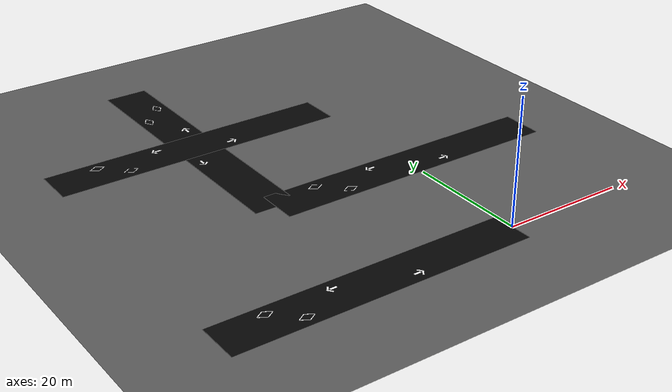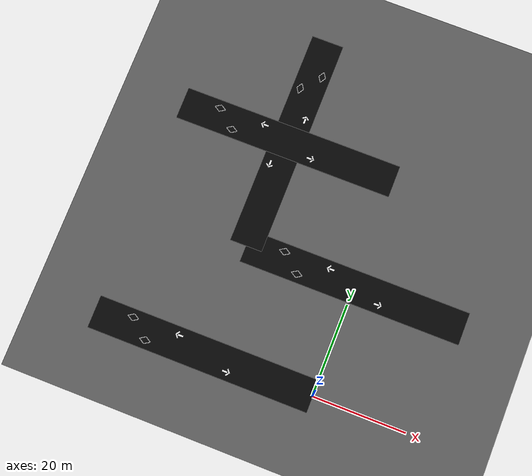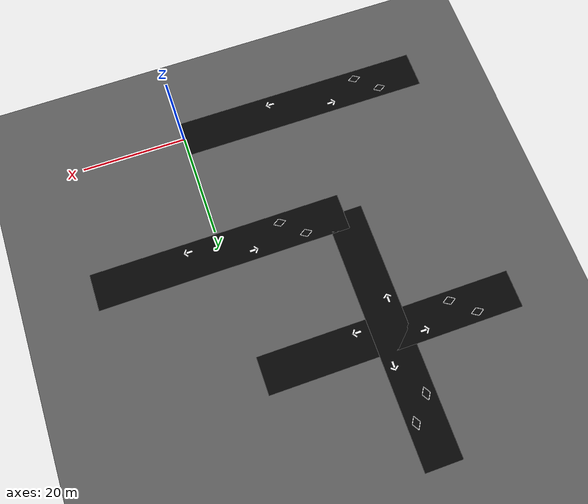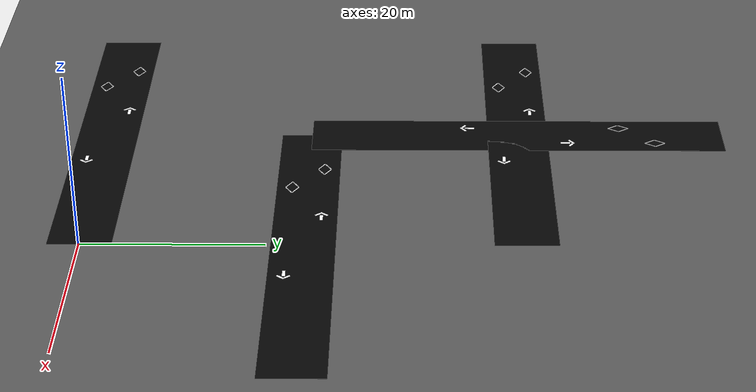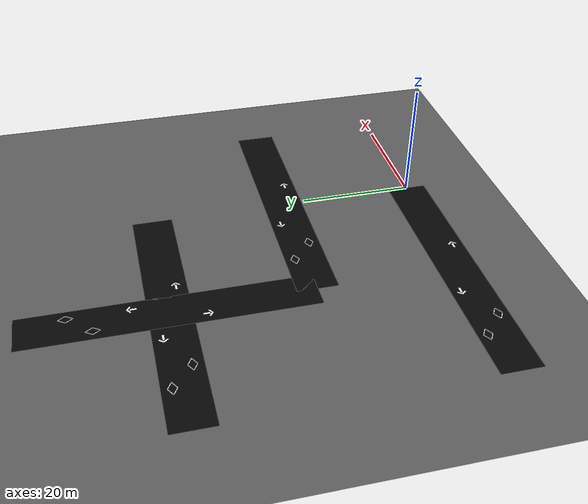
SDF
<sdf version="1.9">
 <world name="test_straight_road_world">
  <light name="sun" type="directional">
   <pose>0 0 10 0 0 0</pose>
   <diffuse>0.8 0.8 0.8 1</diffuse>
   <specular>0.2 0.2 0.2 1</specular>
   <direction>-0.5 0.1 -0.9</direction>
  </light>
  <model name="ground_plane">
   <static>true</static>
   <link name="ground_link">
    <collision name="collision">
     <geometry><plane><normal>0 0 1</normal><size>120 120</size></plane></geometry>
    </collision>
    <visual name="visual">
     <geometry><plane><normal>0 0 1</normal><size>120 120</size></plane></geometry>
     <material><ambient>0.35 0.35 0.35 1</ambient><diffuse>0.35 0.35 0.35 1</diffuse></material>
    </visual>
   </link>
  </model>
  <include><name>straight_road_01</name><uri>model://straight_road</uri><pose>0 0 0 0 0 1.5708</pose></include>
  <include><name>straight_road_02</name><uri>model://straight_road</uri><pose>0 48 0 0 0 1.5708</pose></include>
  <include><name>straight_road_03</name><uri>model://straight_road</uri><pose>-24 24 0 0 0 0</pose></include>
  <include>
   <name>straight_road_04</name>
   <uri>model://straight_road</uri>
   <pose>24 24 0 0 0 1.5708</pose>
  </include>
 </world>
</sdf>

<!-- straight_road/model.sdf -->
<sdf version="1.9">

  <model name="straight_road">
    <static>true</static>

    <link name="road_link">

      <!--
        도로 collision:
        pose z = -0.01, size z = 0.02 이므로
        도로 윗면이 정확히 z = 0.0 이 됨.
      -->
      <collision name="road_collision">
        <pose>0 24 -0.01 0 0 0</pose>
        <geometry>
          <box>
            <size>7 48 0.02</size>
          </box>
        </geometry>
        <surface>
          <friction>
            <ode>
              <mu>1.0</mu>
              <mu2>1.0</mu2>
            </ode>
          </friction>
        </surface>
      </collision>

      <!-- 도로 표면: visual 전용 plane -->
      <visual name="road_surface">
        <pose>0 24 0.000 0 0 0</pose>
        <cast_shadows>false</cast_shadows>
        <geometry>
          <plane>
            <normal>0 0 1</normal>
            <size>7 48</size>
          </plane>
        </geometry>
        <material>
          <ambient>0.02 0.02 0.02 1</ambient>
          <diffuse>0.02 0.02 0.02 1</diffuse>
        </material>
      </visual>

      <!-- 좌측 흰색 경계선 -->
      <visual name="left_edge_line">
        <pose>-3.35 24 0.002 0 0 0</pose>
        <cast_shadows>false</cast_shadows>
        <geometry>
          <plane>
            <normal>0 0 1</normal>
            <size>0.12 48</size>
          </plane>
        </geometry>
        <material>
          <ambient>1 1 1 1</ambient>
          <diffuse>1 1 1 1</diffuse>
        </material>
      </visual>

      <!-- 우측 흰색 경계선 -->
      <visual name="right_edge_line">
        <pose>3.35 24 0.002 0 0 0</pose>
        <cast_shadows>false</cast_shadows>
        <geometry>
          <plane>
            <normal>0 0 1</normal>
            <size>0.12 48</size>
          </plane>
        </geometry>
        <material>
          <ambient>1 1 1 1</ambient>
          <diffuse>1 1 1 1</diffuse>
        </material>
      </visual>

      <!-- 중앙 노란 이중 실선 -->
      <visual name="center_yellow_line_left">
        <pose>-0.10 24 0.002 0 0 0</pose>
        <cast_shadows>false</cast_shadows>
        <geometry>
          <plane>
            <normal>0 0 1</normal>
            <size>0.08 48</size>
          </plane>
        </geometry>
        <material>
          <ambient>1.0 0.78 0.0 1</ambient>
          <diffuse>1.0 0.78 0.0 1</diffuse>
        </material>
      </visual>

      <visual name="center_yellow_line_right">
        <pose>0.10 24 0.002 0 0 0</pose>
        <cast_shadows>false</cast_shadows>
        <geometry>
          <plane>
            <normal>0 0 1</normal>
            <size>0.08 48</size>
          </plane>
        </geometry>
        <material>
          <ambient>1.0 0.78 0.0 1</ambient>
          <diffuse>1.0 0.78 0.0 1</diffuse>
        </material>
      </visual>

      <!-- 시작부 횡단보도 -->
      <visual name="crosswalk_start_s01"><pose>-2.8 2.0 0.003 0 0 0</pose><cast_shadows>false</cast_shadows><geometry><plane><normal>0 0 1</normal><size>0.35 3.0</size></plane></geometry><material><ambient>1 1 1 1</ambient><diffuse>1 1 1 1</diffuse></material></visual>
      <visual name="crosswalk_start_s02"><pose>-2.1 2.0 0.003 0 0 0</pose><cast_shadows>false</cast_shadows><geometry><plane><normal>0 0 1</normal><size>0.35 3.0</size></plane></geometry><material><ambient>1 1 1 1</ambient><diffuse>1 1 1 1</diffuse></material></visual>
      <visual name="crosswalk_start_s03"><pose>-1.4 2.0 0.003 0 0 0</pose><cast_shadows>false</cast_shadows><geometry><plane><normal>0 0 1</normal><size>0.35 3.0</size></plane></geometry><material><ambient>1 1 1 1</ambient><diffuse>1 1 1 1</diffuse></material></visual>
      <visual name="crosswalk_start_s04"><pose>-0.7 2.0 0.003 0 0 0</pose><cast_shadows>false</cast_shadows><geometry><plane><normal>0 0 1</normal><size>0.35 3.0</size></plane></geometry><material><ambient>1 1 1 1</ambient><diffuse>1 1 1 1</diffuse></material></visual>
      <visual name="crosswalk_start_s05"><pose>0.0 2.0 0.003 0 0 0</pose><cast_shadows>false</cast_shadows><geometry><plane><normal>0 0 1</normal><size>0.35 3.0</size></plane></geometry><material><ambient>1 1 1 1</ambient><diffuse>1 1 1 1</diffuse></material></visual>
      <visual name="crosswalk_start_s06"><pose>0.7 2.0 0.003 0 0 0</pose><cast_shadows>false</cast_shadows><geometry><plane><normal>0 0 1</normal><size>0.35 3.0</size></plane></geometry><material><ambient>1 1 1 1</ambient><diffuse>1 1 1 1</diffuse></material></visual>
      <visual name="crosswalk_start_s07"><pose>1.4 2.0 0.003 0 0 0</pose><cast_shadows>false</cast_shadows><geometry><plane><normal>0 0 1</normal><size>0.35 3.0</size></plane></geometry><material><ambient>1 1 1 1</ambient><diffuse>1 1 1 1</diffuse></material></visual>
      <visual name="crosswalk_start_s08"><pose>2.1 2.0 0.003 0 0 0</pose><cast_shadows>false</cast_shadows><geometry><plane><normal>0 0 1</normal><size>0.35 3.0</size></plane></geometry><material><ambient>1 1 1 1</ambient><diffuse>1 1 1 1</diffuse></material></visual>
      <visual name="crosswalk_start_s09"><pose>2.8 2.0 0.003 0 0 0</pose><cast_shadows>false</cast_shadows><geometry><plane><normal>0 0 1</normal><size>0.35 3.0</size></plane></geometry><material><ambient>1 1 1 1</ambient><diffuse>1 1 1 1</diffuse></material></visual>

      <!-- 끝부분 횡단보도 -->
      <visual name="crosswalk_end_s01"><pose>-2.8 46.0 0.003 0 0 0</pose><cast_shadows>false</cast_shadows><geometry><plane><normal>0 0 1</normal><size>0.35 3.0</size></plane></geometry><material><ambient>1 1 1 1</ambient><diffuse>1 1 1 1</diffuse></material></visual>
      <visual name="crosswalk_end_s02"><pose>-2.1 46.0 0.003 0 0 0</pose><cast_shadows>false</cast_shadows><geometry><plane><normal>0 0 1</normal><size>0.35 3.0</size></plane></geometry><material><ambient>1 1 1 1</ambient><diffuse>1 1 1 1</diffuse></material></visual>
      <visual name="crosswalk_end_s03"><pose>-1.4 46.0 0.003 0 0 0</pose><cast_shadows>false</cast_shadows><geometry><plane><normal>0 0 1</normal><size>0.35 3.0</size></plane></geometry><material><ambient>1 1 1 1</ambient><diffuse>1 1 1 1</diffuse></material></visual>
      <visual name="crosswalk_end_s04"><pose>-0.7 46.0 0.003 0 0 0</pose><cast_shadows>false</cast_shadows><geometry><plane><normal>0 0 1</normal><size>0.35 3.0</size></plane></geometry><material><ambient>1 1 1 1</ambient><diffuse>1 1 1 1</diffuse></material></visual>
      <visual name="crosswalk_end_s05"><pose>0.0 46.0 0.003 0 0 0</pose><cast_shadows>false</cast_shadows><geometry><plane><normal>0 0 1</normal><size>0.35 3.0</size></plane></geometry><material><ambient>1 1 1 1</ambient><diffuse>1 1 1 1</diffuse></material></visual>
      <visual name="crosswalk_end_s06"><pose>0.7 46.0 0.003 0 0 0</pose><cast_shadows>false</cast_shadows><geometry><plane><normal>0 0 1</normal><size>0.35 3.0</size></plane></geometry><material><ambient>1 1 1 1</ambient><diffuse>1 1 1 1</diffuse></material></visual>
      <visual name="crosswalk_end_s07"><pose>1.4 46.0 0.003 0 0 0</pose><cast_shadows>false</cast_shadows><geometry><plane><normal>0 0 1</normal><size>0.35 3.0</size></plane></geometry><material><ambient>1 1 1 1</ambient><diffuse>1 1 1 1</diffuse></material></visual>
      <visual name="crosswalk_end_s08"><pose>2.1 46.0 0.003 0 0 0</pose><cast_shadows>false</cast_shadows><geometry><plane><normal>0 0 1</normal><size>0.35 3.0</size></plane></geometry><material><ambient>1 1 1 1</ambient><diffuse>1 1 1 1</diffuse></material></visual>
      <visual name="crosswalk_end_s09"><pose>2.8 46.0 0.003 0 0 0</pose><cast_shadows>false</cast_shadows><geometry><plane><normal>0 0 1</normal><size>0.35 3.0</size></plane></geometry><material><ambient>1 1 1 1</ambient><diffuse>1 1 1 1</diffuse></material></visual>

      <!--
        화살표 수정:
        기존 화살표는 머리 부분 각도와 위치 때문에 Y자처럼 보였음.
        아래는 진행 방향 기준으로 shaft + V-head가 자연스럽게 이어지도록 수정한 값.
      -->

      <!-- 왼쪽 차선 : 아래 방향 -->

      <!-- shaft -->
      <visual name="arrow_left_shaft">
        <pose>-1.75 18.45 0.004 0 0 0</pose>
        <cast_shadows>false</cast_shadows>

        <geometry>
          <plane>
            <normal>0 0 1</normal>
            <size>0.34 1.10</size>
          </plane>
        </geometry>

        <material>
          <ambient>1 1 1 1</ambient>
          <diffuse>1 1 1 1</diffuse>
        </material>
      </visual>

      <!-- left wing -->
      <visual name="arrow_left_head_left">
        <pose>-2.05 17.72 0.004 0 0 0.92</pose>
        <cast_shadows>false</cast_shadows>

        <geometry>
          <plane>
            <normal>0 0 1</normal>
            <size>0.26 1.00</size>
          </plane>
        </geometry>

        <material>
          <ambient>1 1 1 1</ambient>
          <diffuse>1 1 1 1</diffuse>
        </material>
      </visual>

      <!-- right wing -->
      <visual name="arrow_left_head_right">
        <pose>-1.45 17.72 0.004 0 0 -0.92</pose>
        <cast_shadows>false</cast_shadows>

        <geometry>
          <plane>
            <normal>0 0 1</normal>
            <size>0.26 1.00</size>
          </plane>
        </geometry>

        <material>
          <ambient>1 1 1 1</ambient>
          <diffuse>1 1 1 1</diffuse>
        </material>
      </visual>

      <!-- 오른쪽 차선 : 위 방향 -->

      <!-- shaft -->
      <visual name="arrow_right_shaft">
        <pose>1.75 29.55 0.004 0 0 0</pose>
        <cast_shadows>false</cast_shadows>

        <geometry>
          <plane>
            <normal>0 0 1</normal>
            <size>0.34 1.10</size>
          </plane>
        </geometry>

        <material>
          <ambient>1 1 1 1</ambient>
          <diffuse>1 1 1 1</diffuse>
        </material>
      </visual>

      <!-- left wing -->
      <visual name="arrow_right_head_left">
        <pose>1.45 30.28 0.004 0 0 -0.92</pose>
        <cast_shadows>false</cast_shadows>

        <geometry>
          <plane>
            <normal>0 0 1</normal>
            <size>0.26 1.00</size>
          </plane>
        </geometry>

        <material>
          <ambient>1 1 1 1</ambient>
          <diffuse>1 1 1 1</diffuse>
        </material>
      </visual>

      <!-- right wing -->
      <visual name="arrow_right_head_right">
        <pose>2.05 30.28 0.004 0 0 0.92</pose>
        <cast_shadows>false</cast_shadows>

        <geometry>
          <plane>
            <normal>0 0 1</normal>
            <size>0.26 1.00</size>
          </plane>
        </geometry>

        <material>
          <ambient>1 1 1 1</ambient>
          <diffuse>1 1 1 1</diffuse>
        </material>
      </visual>

      <!-- 다이아몬드: 왼쪽 차선 -->
      <visual name="diamond_left_upper_left">
        <pose>-2.125 36.6 0.004 0 0 -0.5586</pose>
        <cast_shadows>false</cast_shadows>
        <geometry><plane><normal>0 0 1</normal><size>0.12 1.4</size></plane></geometry>
        <material><ambient>1 1 1 1</ambient><diffuse>1 1 1 1</diffuse></material>
      </visual>

      <visual name="diamond_left_upper_right">
        <pose>-1.375 36.6 0.004 0 0 0.5586</pose>
        <cast_shadows>false</cast_shadows>
        <geometry><plane><normal>0 0 1</normal><size>0.12 1.4</size></plane></geometry>
        <material><ambient>1 1 1 1</ambient><diffuse>1 1 1 1</diffuse></material>
      </visual>

      <visual name="diamond_left_lower_left">
        <pose>-2.125 35.4 0.004 0 0 0.5586</pose>
        <cast_shadows>false</cast_shadows>
        <geometry><plane><normal>0 0 1</normal><size>0.12 1.4</size></plane></geometry>
        <material><ambient>1 1 1 1</ambient><diffuse>1 1 1 1</diffuse></material>
      </visual>

      <visual name="diamond_left_lower_right">
        <pose>-1.375 35.4 0.004 0 0 -0.5586</pose>
        <cast_shadows>false</cast_shadows>
        <geometry><plane><normal>0 0 1</normal><size>0.12 1.4</size></plane></geometry>
        <material><ambient>1 1 1 1</ambient><diffuse>1 1 1 1</diffuse></material>
      </visual>

      <!-- 다이아몬드: 오른쪽 차선 -->
      <visual name="diamond_right_upper_left">
        <pose>1.375 40.6 0.004 0 0 -0.5586</pose>
        <cast_shadows>false</cast_shadows>
        <geometry><plane><normal>0 0 1</normal><size>0.12 1.4</size></plane></geometry>
        <material><ambient>1 1 1 1</ambient><diffuse>1 1 1 1</diffuse></material>
      </visual>

      <visual name="diamond_right_upper_right">
        <pose>2.125 40.6 0.004 0 0 0.5586</pose>
        <cast_shadows>false</cast_shadows>
        <geometry><plane><normal>0 0 1</normal><size>0.12 1.4</size></plane></geometry>
        <material><ambient>1 1 1 1</ambient><diffuse>1 1 1 1</diffuse></material>
      </visual>

      <visual name="diamond_right_lower_left">
        <pose>1.375 39.4 0.004 0 0 0.5586</pose>
        <cast_shadows>false</cast_shadows>
        <geometry><plane><normal>0 0 1</normal><size>0.12 1.4</size></plane></geometry>
        <material><ambient>1 1 1 1</ambient><diffuse>1 1 1 1</diffuse></material>
      </visual>

      <visual name="diamond_right_lower_right">
        <pose>2.125 39.4 0.004 0 0 -0.5586</pose>
        <cast_shadows>false</cast_shadows>
        <geometry><plane><normal>0 0 1</normal><size>0.12 1.4</size></plane></geometry>
        <material><ambient>1 1 1 1</ambient><diffuse>1 1 1 1</diffuse></material>
      </visual>

    </link>
  </model>

</sdf>
